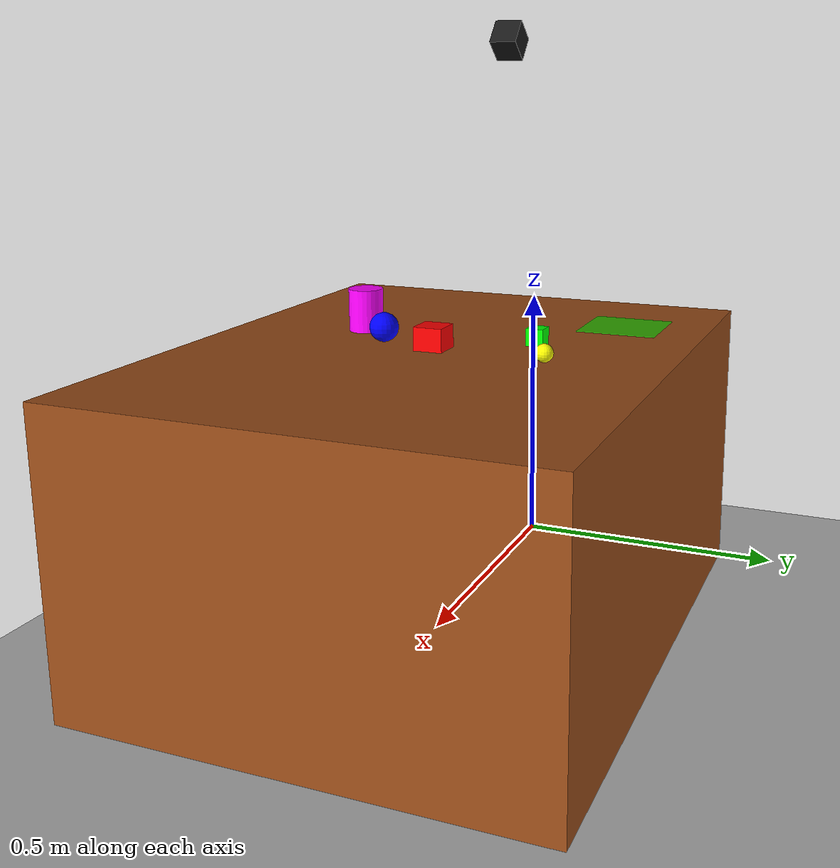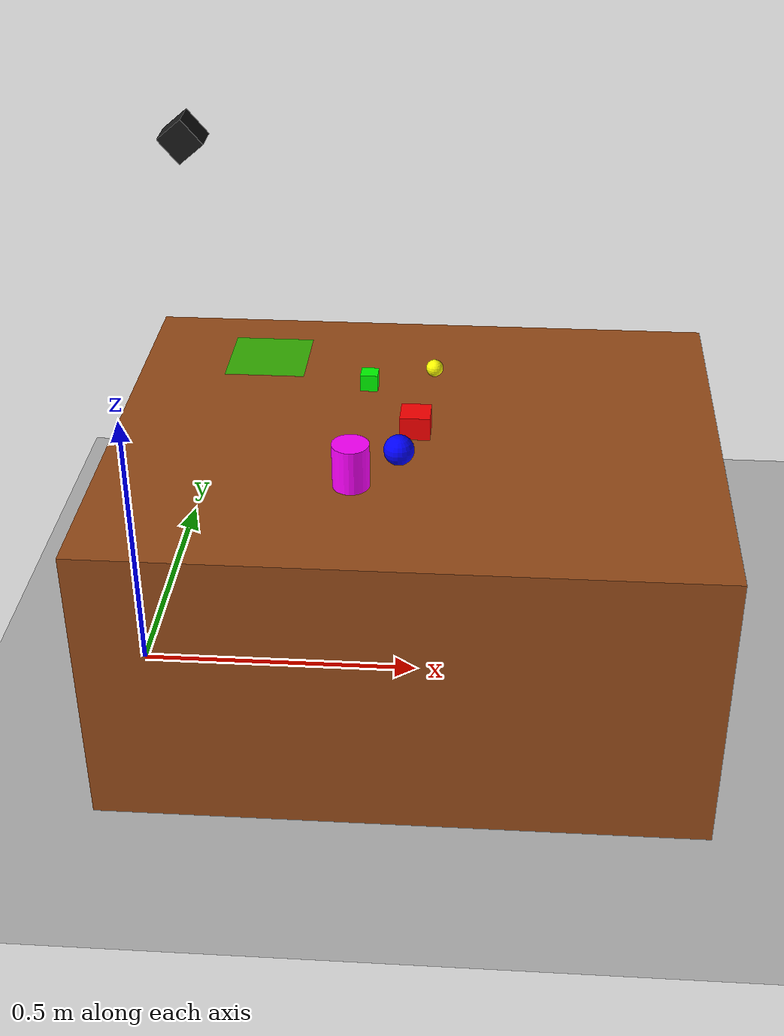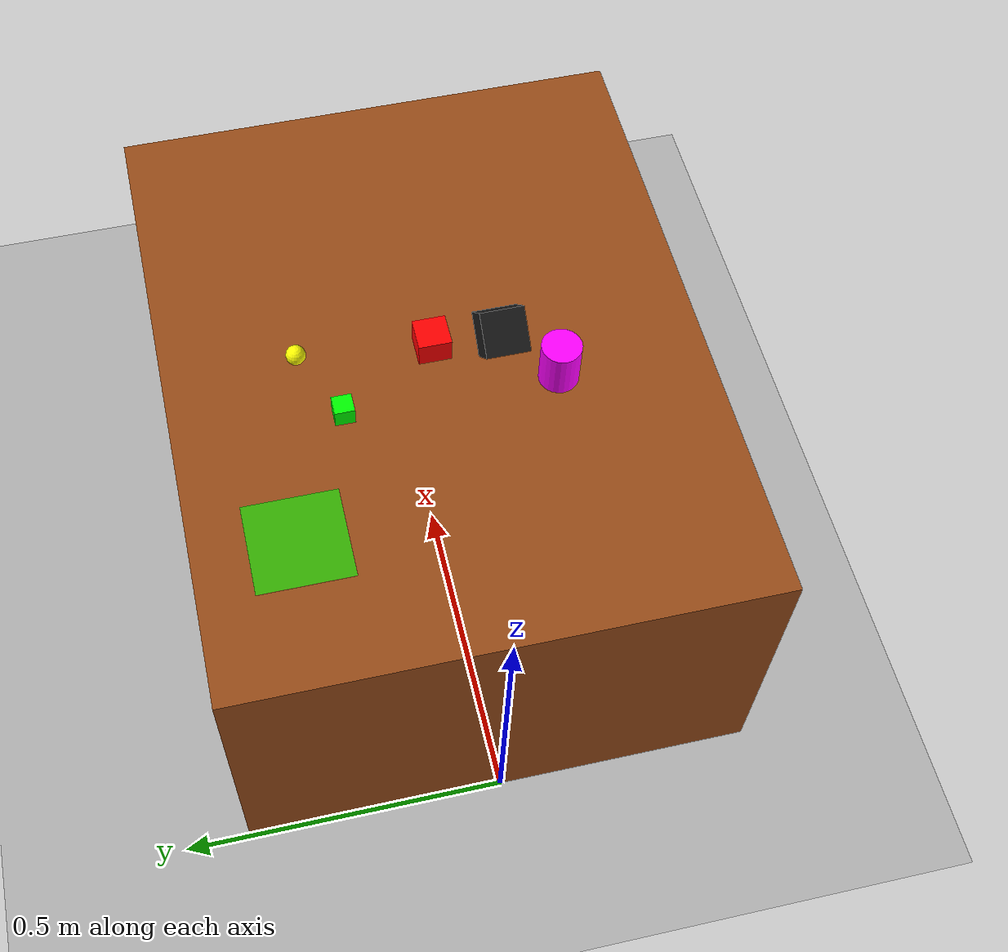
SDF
<?xml version="1.0" ?>

<sdf version="1.8">
  <world name="pick_and_place_world">

    <physics name="turbo_bullet_20x" type="bullet">
      <max_step_size>0.008</max_step_size>

      <real_time_factor>20.0</real_time_factor>

      <real_time_update_rate>0</real_time_update_rate>

      <bullet>
        <solver>
          <type>sequential_impulse</type>
          <iters>12</iters>
        </solver>
        <constraints>
          <cfm>0.0</cfm>
          <erp>0.2</erp>
          <contact_surface_layer>0.003</contact_surface_layer>
        </constraints>
      </bullet>
    </physics>

    <plugin filename="gz-sim-physics-system"        name="gz::sim::systems::Physics"/>
    <plugin filename="gz-sim-user-commands-system"  name="gz::sim::systems::UserCommands"/>
    <plugin filename="gz-sim-scene-broadcaster-system" name="gz::sim::systems::SceneBroadcaster"/>
    <plugin filename="gz-sim-contact-system"        name="gz::sim::systems::Contact"/>
    <plugin filename="gz-sim-sensors-system"        name="gz::sim::systems::Sensors">
      <render_engine>ogre2</render_engine>
    </plugin>

    <light type="directional" name="sun">
      <cast_shadows>true</cast_shadows>
      <pose>0 0 10 0 0 0</pose>
      <diffuse>0.8 0.8 0.8 1</diffuse>
      <specular>0.2 0.2 0.2 1</specular>
    </light>

    <model name="ground_plane">
      <static>true</static>
      <link name="link">
        <collision name="collision">
          <geometry><plane><normal>0 0 1</normal></plane></geometry>
          <surface>
            <friction><ode><mu>1.0</mu><mu2>1.0</mu2></ode></friction>
          </surface>
        </collision>
        <visual name="visual">
          <geometry><plane><normal>0 0 1</normal></plane></geometry>
          <material>
            <ambient>0.3 0.3 0.3 1</ambient>
            <diffuse>0.7 0.7 0.7 1</diffuse>
          </material>
        </visual>
      </link>
    </model>

    <model name="table">
      <static>true</static>
      <pose>0.5 0 0.25 0 0 0</pose>
      <link name="link">
        <collision name="collision">
          <geometry><box><size>1.0 0.8 0.5</size></box></geometry>
          <surface>
            <friction>
              <ode>
                <mu>2.0</mu>
                <mu2>2.0</mu2>
                <fdir1>0 0 0</fdir1>
                <slip1>0.0</slip1>
                <slip2>0.0</slip2>
              </ode>
            </friction>
            <contact>
              <ode>
                <soft_cfm>0.0</soft_cfm>
                <soft_erp>0.2</soft_erp>
                <kp>1e6</kp>
                <kd>1.0</kd>
                <max_vel>0.01</max_vel>
                <min_depth>0.001</min_depth>
              </ode>
            </contact>
          </surface>
        </collision>
        <visual name="visual">
          <geometry><box><size>1.0 0.8 0.5</size></box></geometry>
          <material>
            <ambient>0.4 0.2 0.1 1</ambient>
            <diffuse>0.6 0.3 0.1 1</diffuse>
          </material>
        </visual>
      </link>
    </model>

    <model name="overhead_camera">
      <static>true</static>
      <pose>0.15 0.0 1.0 0 0.8727 0</pose>
      <link name="link">
        <sensor name="camera" type="camera">
          <camera>
            <horizontal_fov>1.047</horizontal_fov>
            <image>
              <width>640</width>
              <height>480</height>
            </image>
            <clip>
              <near>0.1</near>
              <far>100</far>
            </clip>
          </camera>
          <always_on>1</always_on>
          <update_rate>30</update_rate>
          <visualize>true</visualize>
          <topic>camera/image_raw</topic>
        </sensor>

        <visual name="visual">
          <geometry><box><size>0.05 0.05 0.05</size></box></geometry>
          <material>
            <ambient>0 0 0 1</ambient>
            <diffuse>0.1 0.1 0.1 1</diffuse>
          </material>
        </visual>

        <light name="camera_flashlight" type="spot">
          <pose>0 0 0 0 -1.5708 0</pose>
          <cast_shadows>false</cast_shadows>
          <diffuse>1.0 1.0 1.0 1.0</diffuse>
          <specular>0.3 0.3 0.3 1.0</specular>
          <intensity>2.5</intensity>
          <attenuation>
            <range>3.0</range>
            <constant>0.5</constant>
            <linear>0.1</linear>
            <quadratic>0.01</quadratic>
          </attenuation>
          <spot>
            <inner_angle>0.6</inner_angle>
            <outer_angle>1.1</outer_angle>
            <falloff>1.0</falloff>
          </spot>
        </light>

      </link>
    </model>

    <model name="drop_zone_marker">
      <static>true</static>
      <pose>0.22 0.25 0.501 0 0 0</pose>
      <link name="link">
        <visual name="tile">
          <geometry><box><size>0.14 0.14 0.001</size></box></geometry>
          <material>
            <ambient>0.0 0.8 0.0 0.6</ambient>
            <diffuse>0.0 1.0 0.0 0.6</diffuse>
          </material>
        </visual>
      </link>
    </model>

    <model name="large_cube">
      <pose>0.5 0.0 0.515 0 0 0</pose>
      <link name="link">
        <inertial>
          <mass>0.1</mass>
          <inertia>
            <ixx>0.0000416</ixx><iyy>0.0000416</iyy><izz>0.0000416</izz>
          </inertia>
        </inertial>
        <collision name="collision">
          <geometry><box><size>0.05 0.05 0.05</size></box></geometry>
          <surface>
            <friction><ode><mu>3.0</mu><mu2>3.0</mu2></ode></friction>
            <contact>
              <ode>
                <soft_cfm>0.0</soft_cfm>
                <soft_erp>0.2</soft_erp>
                <kp>1e7</kp>
                <kd>1.0</kd>
                <min_depth>0.001</min_depth>
              </ode>
            </contact>
          </surface>
        </collision>
        <visual name="visual">
          <geometry><box><size>0.05 0.05 0.05</size></box></geometry>
          <material>
            <ambient>1 0 0 1</ambient><diffuse>1 0 0 1</diffuse>
          </material>
        </visual>
      </link>
    </model>

    <model name="small_cube">
      <pose>0.41 0.15 0.515 0 0 0</pose>
      <link name="link">
        <inertial>
          <mass>0.05</mass>
          <inertia>
            <ixx>0.0000075</ixx><iyy>0.0000075</iyy><izz>0.0000075</izz>
          </inertia>
        </inertial>
        <collision name="collision">
          <geometry><box><size>0.03 0.03 0.03</size></box></geometry>
          <surface>
            <friction><ode><mu>3.0</mu><mu2>3.0</mu2></ode></friction>
            <contact>
              <ode>
                <soft_cfm>0.0</soft_cfm>
                <soft_erp>0.2</soft_erp>
                <kp>1e7</kp>
                <kd>1.0</kd>
                <min_depth>0.001</min_depth>
              </ode>
            </contact>
          </surface>
        </collision>
        <visual name="visual">
          <geometry><box><size>0.03 0.03 0.03</size></box></geometry>
          <material>
            <ambient>0 1 0 1</ambient><diffuse>0 1 0 1</diffuse>
          </material>
        </visual>
      </link>
    </model>

    <model name="large_ball">
      <pose>0.48 -0.1 0.525 0 0 0</pose>
      <link name="link">
        <inertial>
          <mass>0.08</mass>
          <inertia>
            <ixx>0.00002</ixx><iyy>0.00002</iyy><izz>0.00002</izz>
          </inertia>
        </inertial>
        <collision name="collision">
          <geometry><sphere><radius>0.025</radius></sphere></geometry>
          <surface>
            <friction><ode><mu>3.0</mu><mu2>3.0</mu2></ode></friction>
            <contact>
              <ode>
                <soft_cfm>0.0</soft_cfm>
                <soft_erp>0.2</soft_erp>
                <kp>1e7</kp>
                <kd>1.0</kd>
                <min_depth>0.001</min_depth>
              </ode>
            </contact>
          </surface>
        </collision>
        <visual name="visual">
          <geometry><sphere><radius>0.025</radius></sphere></geometry>
          <material>
            <ambient>0 0 1 1</ambient><diffuse>0 0 1 1</diffuse>
          </material>
        </visual>
      </link>
    </model>

    <model name="small_ball">
      <pose>0.52 0.2 0.515 0 0 0</pose>
      <link name="link">
        <inertial>
          <mass>0.03</mass>
          <inertia>
            <ixx>0.0000027</ixx><iyy>0.0000027</iyy><izz>0.0000027</izz>
          </inertia>
        </inertial>
        <collision name="collision">
          <geometry><sphere><radius>0.015</radius></sphere></geometry>
          <surface>
            <friction><ode><mu>3.0</mu><mu2>3.0</mu2></ode></friction>
            <contact>
              <ode>
                <soft_cfm>0.0</soft_cfm>
                <soft_erp>0.2</soft_erp>
                <kp>1e7</kp>
                <kd>1.0</kd>
                <min_depth>0.001</min_depth>
              </ode>
            </contact>
          </surface>
        </collision>
        <visual name="visual">
          <geometry><sphere><radius>0.015</radius></sphere></geometry>
          <material>
            <ambient>1 1 0 1</ambient><diffuse>1 1 0 1</diffuse>
          </material>
        </visual>
      </link>
    </model>

    <model name="peg_cylinder">
      <pose>0.41 -0.17 0.525 0 0 0</pose>
      <link name="link">
        <inertial>
          <mass>0.07</mass>
          <inertia>
            <ixx>0.0000218</ixx><iyy>0.0000218</iyy><izz>0.000014</izz>
          </inertia>
        </inertial>
        <collision name="collision">
          <geometry>
            <cylinder><radius>0.03</radius><length>0.1</length></cylinder>
          </geometry>
          <surface>
            <friction><ode><mu>3.0</mu><mu2>3.0</mu2></ode></friction>
            <contact>
              <ode>
                <soft_cfm>0.0</soft_cfm>
                <soft_erp>0.2</soft_erp>
                <kp>1e7</kp>
                <kd>1.0</kd>
                <min_depth>0.001</min_depth>
              </ode>
            </contact>
          </surface>
        </collision>
        <visual name="visual">
          <geometry>
            <cylinder><radius>0.03</radius><length>0.1</length></cylinder>
          </geometry>
          <material>
            <ambient>1 0 1 1</ambient><diffuse>1 0 1 1</diffuse>
          </material>
        </visual>
      </link>
    </model>

  </world>
</sdf>
